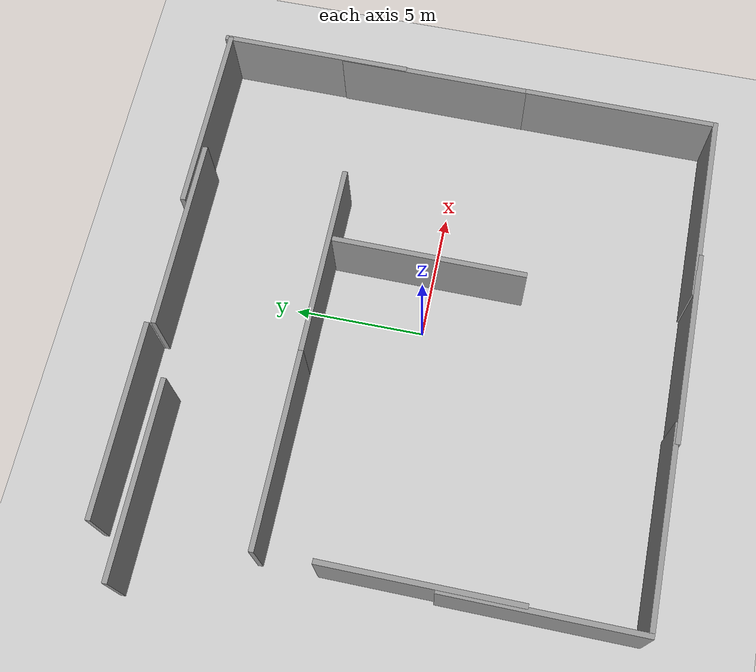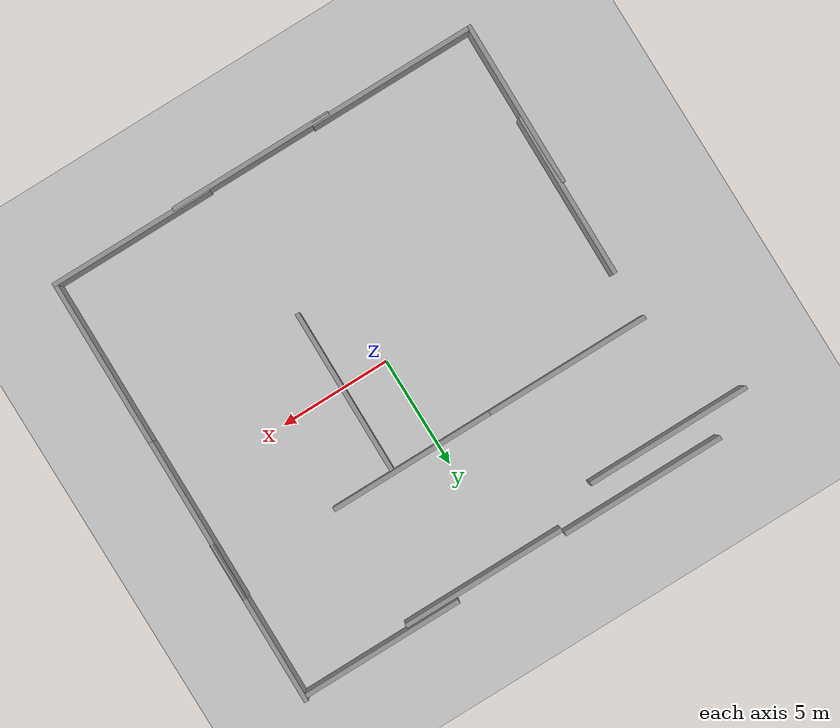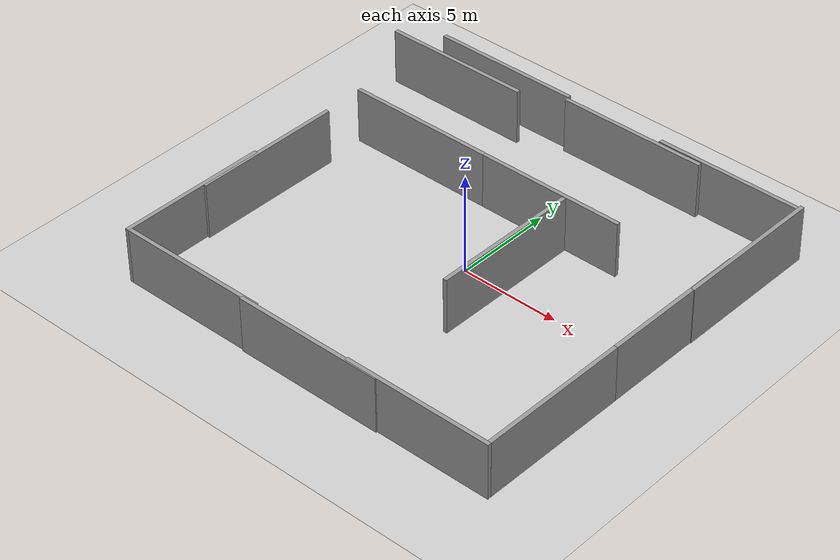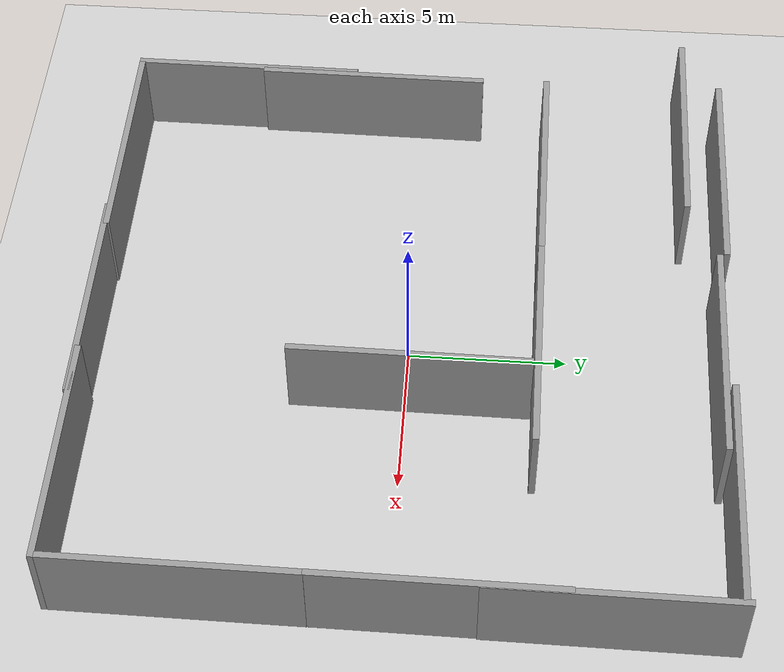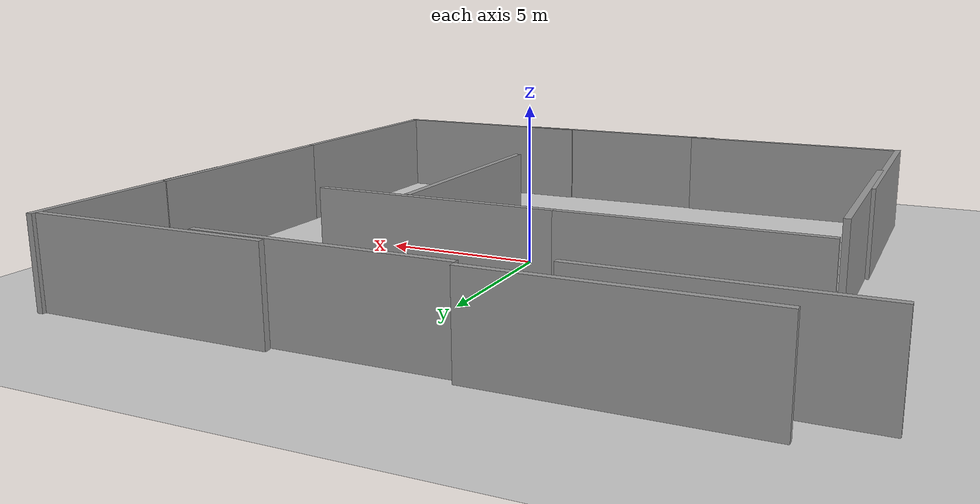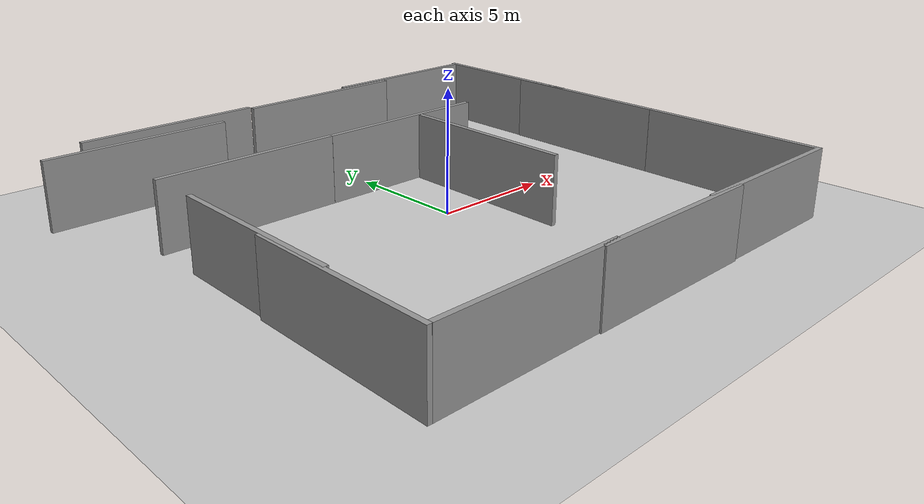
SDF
<sdf version="1.7">
 <world name="default">
  <light name="sun" type="directional">
   <pose>0 0 10 0 -0 0</pose>
   <diffuse>0.8 0.8 0.8 1</diffuse>
   <specular>0.2 0.2 0.2 1</specular>
   <attenuation>
    <range>1000</range>
    <constant>0.9</constant>
    <linear>0.01</linear>
    <quadratic>0.001</quadratic>
   </attenuation>
   <direction>-0.5 0.1 -0.9</direction>
   <spot><inner_angle>0</inner_angle><outer_angle>0</outer_angle><falloff>0</falloff></spot>
  </light>
  <model name="ground_plane">
   <static>1</static>
   <link name="link">
    <collision name="collision">
     <geometry><plane><normal>0 0 1</normal><size>100 100</size></plane></geometry>
     <surface>
      <contact><collide_bitmask>65535</collide_bitmask></contact>
      <friction><ode><mu>100</mu><mu2>50</mu2></ode></friction>
     </surface>
    </collision>
    <visual name="visual">
     <cast_shadows>0</cast_shadows>
     <geometry><plane><normal>0 0 1</normal><size>100 100</size></plane></geometry>
     <material>
      <script><uri>file://media/materials/scripts/gazebo.material</uri><name>Gazebo/Grey</name></script>
     </material>
    </visual>
   </link>
  </model>
  <gravity>0 0 -9.8</gravity>
  <magnetic_field>6e-06 2.3e-05 -4.2e-05</magnetic_field>
  <atmosphere type="adiabatic"/>
  <physics type="ode">
   <max_step_size>0.001</max_step_size>
   <real_time_factor>1</real_time_factor>
   <real_time_update_rate>1000</real_time_update_rate>
  </physics>
  <scene><ambient>0.4 0.4 0.4 1</ambient><background>0.7 0.7 0.7 1</background><shadows>1</shadows></scene>
  <audio><device>default</device></audio>
  <spherical_coordinates>
   <surface_model>EARTH_WGS84</surface_model>
   <latitude_deg>0</latitude_deg>
   <longitude_deg>0</longitude_deg>
   <elevation>0</elevation>
   <heading_deg>0</heading_deg>
  </spherical_coordinates>
  <model name="grey_wall_1">
   <static>1</static>
   <link name="link">
    <pose>0 0 1.4 0 -0 0</pose>
    <collision name="collision"><geometry><box><size>7.5 0.2 2.8</size></box></geometry></collision>
    <visual name="visual">
     <cast_shadows>0</cast_shadows>
     <geometry><box><size>7.5 0.2 2.8</size></box></geometry>
     <material>
      <script>
       <uri>model://grey_wall/materials/scripts</uri>
       <uri>model://grey_wall/materials/textures</uri>
       <name>vrc/grey_wall</name>
      </script>
     </material>
    </visual>
   </link>
   <pose>-8.22026 8.6616 0 0 -0 0</pose>
  </model>
  <model name="grey_wall_6">
   <static>1</static>
   <link name="link">
    <pose>0 0 1.4 0 -0 0</pose>
    <collision name="collision"><geometry><box><size>7.5 0.2 2.8</size></box></geometry></collision>
    <visual name="visual">
     <cast_shadows>0</cast_shadows>
     <geometry><box><size>7.5 0.2 2.8</size></box></geometry>
     <material>
      <script>
       <uri>model://grey_wall/materials/scripts</uri>
       <uri>model://grey_wall/materials/textures</uri>
       <name>vrc/grey_wall</name>
      </script>
     </material>
    </visual>
   </link>
   <pose>-6.25072 9.85155 0 0 -0 0</pose>
  </model>
  <model name="grey_wall_6_clone">
   <static>1</static>
   <link name="link">
    <pose>0 0 1.4 0 -0 0</pose>
    <collision name="collision"><geometry><box><size>7.5 0.2 2.8</size></box></geometry></collision>
    <visual name="visual">
     <cast_shadows>0</cast_shadows>
     <geometry><box><size>7.5 0.2 2.8</size></box></geometry>
     <material>
      <script>
       <uri>model://grey_wall/materials/scripts</uri>
       <uri>model://grey_wall/materials/textures</uri>
       <name>vrc/grey_wall</name>
      </script>
     </material>
    </visual>
   </link>
   <pose>1.26721 9.62466 0 0 -0 0</pose>
  </model>
  <model name="grey_wall_1_clone">
   <static>1</static>
   <link name="link">
    <pose>0 0 1.4 0 -0 0</pose>
    <collision name="collision"><geometry><box><size>7.5 0.2 2.8</size></box></geometry></collision>
    <visual name="visual">
     <cast_shadows>0</cast_shadows>
     <geometry><box><size>7.5 0.2 2.8</size></box></geometry>
     <material>
      <script>
       <uri>model://grey_wall/materials/scripts</uri>
       <uri>model://grey_wall/materials/textures</uri>
       <name>vrc/grey_wall</name>
      </script>
     </material>
    </visual>
   </link>
   <pose>-9.9006 -1.85977 0 0 0 -1.5814</pose>
  </model>
  <model name="grey_wall_1_clone_clone">
   <static>1</static>
   <link name="link">
    <pose>0 0 1.4 0 -0 0</pose>
    <collision name="collision"><geometry><box><size>7.5 0.2 2.8</size></box></geometry></collision>
    <visual name="visual">
     <cast_shadows>0</cast_shadows>
     <geometry><box><size>7.5 0.2 2.8</size></box></geometry>
     <material>
      <script>
       <uri>model://grey_wall/materials/scripts</uri>
       <uri>model://grey_wall/materials/textures</uri>
       <name>vrc/grey_wall</name>
      </script>
     </material>
    </visual>
   </link>
   <pose>-10.0661 -6.15561 0 0 0 -1.5814</pose>
  </model>
  <model name="grey_wall_6_clone_0">
   <static>1</static>
   <link name="link">
    <pose>0 0 1.4 0 -0 0</pose>
    <collision name="collision"><geometry><box><size>7.5 0.2 2.8</size></box></geometry></collision>
    <visual name="visual">
     <cast_shadows>0</cast_shadows>
     <geometry><box><size>7.5 0.2 2.8</size></box></geometry>
     <material>
      <script>
       <uri>model://grey_wall/materials/scripts</uri>
       <uri>model://grey_wall/materials/textures</uri>
       <name>vrc/grey_wall</name>
      </script>
     </material>
    </visual>
   </link>
   <pose>-6.28155 -9.81063 0 0 -0 0</pose>
  </model>
  <model name="grey_wall_6_clone_0_clone">
   <static>1</static>
   <link name="link">
    <pose>0 0 1.4 0 -0 0</pose>
    <collision name="collision"><geometry><box><size>7.5 0.2 2.8</size></box></geometry></collision>
    <visual name="visual">
     <cast_shadows>0</cast_shadows>
     <geometry><box><size>7.5 0.2 2.8</size></box></geometry>
     <material>
      <script>
       <uri>model://grey_wall/materials/scripts</uri>
       <uri>model://grey_wall/materials/textures</uri>
       <name>vrc/grey_wall</name>
      </script>
     </material>
    </visual>
   </link>
   <pose>0.394006 -9.87734 0 0 -0 0</pose>
  </model>
  <model name="grey_wall_6_clone_0_clone_clone">
   <static>1</static>
   <link name="link">
    <pose>0 0 1.4 0 -0 0</pose>
    <collision name="collision"><geometry><box><size>7.5 0.2 2.8</size></box></geometry></collision>
    <visual name="visual">
     <cast_shadows>0</cast_shadows>
     <geometry><box><size>7.5 0.2 2.8</size></box></geometry>
     <material>
      <script>
       <uri>model://grey_wall/materials/scripts</uri>
       <uri>model://grey_wall/materials/textures</uri>
       <name>vrc/grey_wall</name>
      </script>
     </material>
    </visual>
   </link>
   <pose>6.20069 -9.81461 0 0 -0 0</pose>
  </model>
  <model name="grey_wall_1_clone_clone_clone">
   <static>1</static>
   <link name="link">
    <pose>0 0 1.4 0 -0 0</pose>
    <collision name="collision"><geometry><box><size>7.5 0.2 2.8</size></box></geometry></collision>
    <visual name="visual">
     <cast_shadows>0</cast_shadows>
     <geometry><box><size>7.5 0.2 2.8</size></box></geometry>
     <material>
      <script>
       <uri>model://grey_wall/materials/scripts</uri>
       <uri>model://grey_wall/materials/textures</uri>
       <name>vrc/grey_wall</name>
      </script>
     </material>
    </visual>
   </link>
   <pose>9.8912 -5.98839 0 0 0 -1.5814</pose>
  </model>
  <model name="grey_wall_1_clone_clone_clone_clone">
   <static>1</static>
   <link name="link">
    <pose>0 0 1.4 0 -0 0</pose>
    <collision name="collision"><geometry><box><size>7.5 0.2 2.8</size></box></geometry></collision>
    <visual name="visual">
     <cast_shadows>0</cast_shadows>
     <geometry><box><size>7.5 0.2 2.8</size></box></geometry>
     <material>
      <script>
       <uri>model://grey_wall/materials/scripts</uri>
       <uri>model://grey_wall/materials/textures</uri>
       <name>vrc/grey_wall</name>
      </script>
     </material>
    </visual>
   </link>
   <pose>9.96544 1.47963 0 0 0 -1.5814</pose>
  </model>
  <model name="grey_wall_1_clone_clone_clone_clone_clone">
   <static>1</static>
   <link name="link">
    <pose>0 0 1.4 0 -0 0</pose>
    <collision name="collision"><geometry><box><size>7.5 0.2 2.8</size></box></geometry></collision>
    <visual name="visual">
     <cast_shadows>0</cast_shadows>
     <geometry><box><size>7.5 0.2 2.8</size></box></geometry>
     <material>
      <script>
       <uri>model://grey_wall/materials/scripts</uri>
       <uri>model://grey_wall/materials/textures</uri>
       <name>vrc/grey_wall</name>
      </script>
     </material>
    </visual>
   </link>
   <pose>10.049 6.3613 0 0 0 -1.5814</pose>
  </model>
  <model name="grey_wall_6_clone_clone">
   <static>1</static>
   <link name="link">
    <pose>0 0 1.4 0 -0 0</pose>
    <collision name="collision"><geometry><box><size>7.5 0.2 2.8</size></box></geometry></collision>
    <visual name="visual">
     <cast_shadows>0</cast_shadows>
     <geometry><box><size>7.5 0.2 2.8</size></box></geometry>
     <material>
      <script>
       <uri>model://grey_wall/materials/scripts</uri>
       <uri>model://grey_wall/materials/textures</uri>
       <name>vrc/grey_wall</name>
      </script>
     </material>
    </visual>
   </link>
   <pose>6.38685 9.89437 0 0 -0 0</pose>
  </model>
  <model name="grey_wall_6_clone_1">
   <static>1</static>
   <link name="link">
    <pose>0 0 1.4 0 -0 0</pose>
    <collision name="collision"><geometry><box><size>7.5 0.2 2.8</size></box></geometry></collision>
    <visual name="visual">
     <cast_shadows>0</cast_shadows>
     <geometry><box><size>7.5 0.2 2.8</size></box></geometry>
     <material>
      <script>
       <uri>model://grey_wall/materials/scripts</uri>
       <uri>model://grey_wall/materials/textures</uri>
       <name>vrc/grey_wall</name>
      </script>
     </material>
    </visual>
   </link>
   <pose>-6.22371 4.03713 0 0 -0 0</pose>
  </model>
  <model name="grey_wall_6_clone_1_clone">
   <static>1</static>
   <link name="link">
    <pose>0 0 1.4 0 -0 0</pose>
    <collision name="collision"><geometry><box><size>7.5 0.2 2.8</size></box></geometry></collision>
    <visual name="visual">
     <cast_shadows>0</cast_shadows>
     <geometry><box><size>7.5 0.2 2.8</size></box></geometry>
     <material>
      <script>
       <uri>model://grey_wall/materials/scripts</uri>
       <uri>model://grey_wall/materials/textures</uri>
       <name>vrc/grey_wall</name>
      </script>
     </material>
    </visual>
   </link>
   <pose>1.26962 4.03464 0 0 -0 0</pose>
  </model>
  <model name="grey_wall_1_clone_clone_clone_clone_clone_0">
   <static>1</static>
   <link name="link">
    <pose>0 0 1.4 0 -0 0</pose>
    <collision name="collision"><geometry><box><size>7.5 0.2 2.8</size></box></geometry></collision>
    <visual name="visual">
     <cast_shadows>0</cast_shadows>
     <geometry><box><size>7.5 0.2 2.8</size></box></geometry>
     <material>
      <script>
       <uri>model://grey_wall/materials/scripts</uri>
       <uri>model://grey_wall/materials/textures</uri>
       <name>vrc/grey_wall</name>
      </script>
     </material>
    </visual>
   </link>
   <pose>2.10454 0.159477 0 0 0 -1.5814</pose>
  </model>
 </world>
</sdf>
